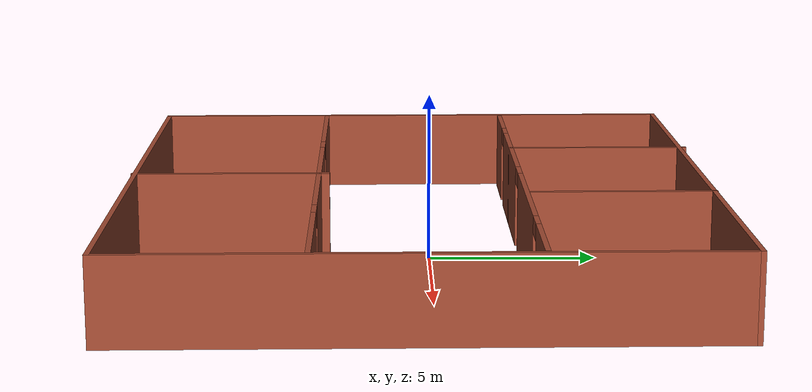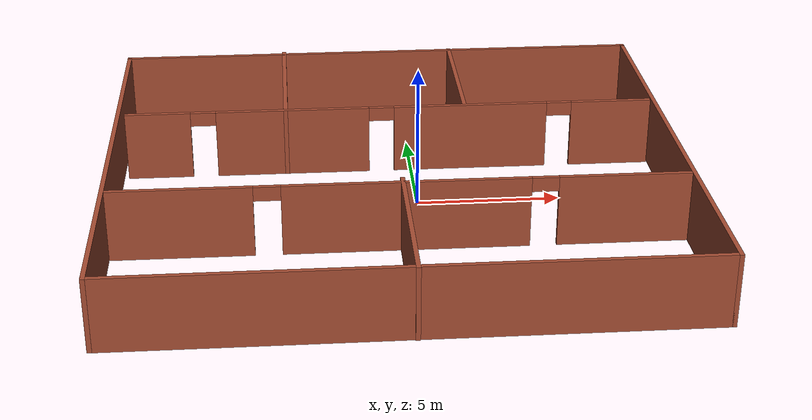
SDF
<?xml version='1.0'?>
<sdf version='1.6'>
  <model name='Building'>
    <pose frame=''>-0.815891 -0.27075 0 0 -0 0</pose>
    <link name='Wall_11'>
      <collision name='Wall_11_Collision'>
        <geometry>
          <box>
            <size>19.5 0.15 2.5</size>
          </box>
        </geometry>
        <pose frame=''>0 0 1.25 0 -0 0</pose>
      </collision>
      <visual name='Wall_11_Visual'>
        <pose frame=''>0 0 1.25 0 -0 0</pose>
        <geometry>
          <box>
            <size>19.5 0.15 2.5</size>
          </box>
        </geometry>
        <material>
          <script>
            <uri>file://media/materials/scripts/gazebo.material</uri>
            <name>Gazebo/Bricks</name>
          </script>
          <ambient>1 1 1 1</ambient>
        </material>
        <meta>
          <layer>0</layer>
        </meta>
      </visual>
      <pose frame=''>0 8.49662 0 0 -0 3.14159</pose>
    </link>
    <link name='Wall_14'>
      <collision name='Wall_14_Collision'>
        <geometry>
          <box>
            <size>17.25 0.15 2.5</size>
          </box>
        </geometry>
        <pose frame=''>0 0 1.25 0 -0 0</pose>
      </collision>
      <visual name='Wall_14_Visual'>
        <pose frame=''>0 0 1.25 0 -0 0</pose>
        <geometry>
          <box>
            <size>17.25 0.15 2.5</size>
          </box>
        </geometry>
        <material>
          <script>
            <uri>file://media/materials/scripts/gazebo.material</uri>
            <name>Gazebo/Bricks</name>
          </script>
          <ambient>1 1 1 1</ambient>
        </material>
        <meta>
          <layer>0</layer>
        </meta>
      </visual>
      <pose frame=''>-9.675 -0.053382 0 0 -0 1.5708</pose>
    </link>
    <link name='Wall_16'>
      <pose frame=''>0.002951 -3.04368 0 0 -0 0</pose>
      <visual name='Wall_16_Visual_0'>
        <pose frame=''>-7.22833 0 1.25 0 -0 0</pose>
        <geometry>
          <box>
            <size>4.79334 0.15 2.5</size>
          </box>
        </geometry>
        <material>
          <script>
            <uri>file://media/materials/scripts/gazebo.material</uri>
            <name>Gazebo/Bricks</name>
          </script>
          <ambient>1 1 1 1</ambient>
        </material>
        <meta>
          <layer>0</layer>
        </meta>
      </visual>
      <collision name='Wall_16_Collision_0'>
        <geometry>
          <box>
            <size>4.79334 0.15 2.5</size>
          </box>
        </geometry>
        <pose frame=''>-7.22833 0 1.25 0 -0 0</pose>
      </collision>
      <visual name='Wall_16_Visual_1'>
        <pose frame=''>0.171405 0 1.25 0 -0 0</pose>
        <geometry>
          <box>
            <size>8.20613 0.15 2.5</size>
          </box>
        </geometry>
        <material>
          <script>
            <uri>file://media/materials/scripts/gazebo.material</uri>
            <name>Gazebo/Bricks</name>
          </script>
          <ambient>1 1 1 1</ambient>
        </material>
        <meta>
          <layer>0</layer>
        </meta>
      </visual>
      <collision name='Wall_16_Collision_1'>
        <geometry>
          <box>
            <size>8.20613 0.15 2.5</size>
          </box>
        </geometry>
        <pose frame=''>0.171405 0 1.25 0 -0 0</pose>
      </collision>
      <visual name='Wall_16_Visual_2'>
        <pose frame=''>7.39973 0 1.25 0 -0 0</pose>
        <geometry>
          <box>
            <size>4.45053 0.15 2.5</size>
          </box>
        </geometry>
        <material>
          <script>
            <uri>file://media/materials/scripts/gazebo.material</uri>
            <name>Gazebo/Bricks</name>
          </script>
          <ambient>1 1 1 1</ambient>
        </material>
        <meta>
          <layer>0</layer>
        </meta>
      </visual>
      <collision name='Wall_16_Collision_2'>
        <geometry>
          <box>
            <size>4.45053 0.15 2.5</size>
          </box>
        </geometry>
        <pose frame=''>7.39973 0 1.25 0 -0 0</pose>
      </collision>
      <visual name='Wall_16_Visual_3'>
        <pose frame=''>-4.38166 0 2.25 0 -0 0</pose>
        <geometry>
          <box>
            <size>0.9 0.15 0.5</size>
          </box>
        </geometry>
        <material>
          <script>
            <uri>file://media/materials/scripts/gazebo.material</uri>
            <name>Gazebo/Bricks</name>
          </script>
          <ambient>1 1 1 1</ambient>
        </material>
        <meta>
          <layer>0</layer>
        </meta>
      </visual>
      <collision name='Wall_16_Collision_3'>
        <geometry>
          <box>
            <size>0.9 0.15 0.5</size>
          </box>
        </geometry>
        <pose frame=''>-4.38166 0 2.25 0 -0 0</pose>
      </collision>
      <visual name='Wall_16_Visual_4'>
        <pose frame=''>4.72447 0 2.25 0 -0 0</pose>
        <geometry>
          <box>
            <size>0.9 0.15 0.5</size>
          </box>
        </geometry>
        <material>
          <script>
            <uri>file://media/materials/scripts/gazebo.material</uri>
            <name>Gazebo/Bricks</name>
          </script>
          <ambient>1 1 1 1</ambient>
        </material>
        <meta>
          <layer>0</layer>
        </meta>
      </visual>
      <collision name='Wall_16_Collision_4'>
        <geometry>
          <box>
            <size>0.9 0.15 0.5</size>
          </box>
        </geometry>
        <pose frame=''>4.72447 0 2.25 0 -0 0</pose>
      </collision>
    </link>
    <link name='Wall_18'>
      <pose frame=''>0.062534 3.04758 0 0 -0 0</pose>
      <visual name='Wall_18_Visual_0'>
        <pose frame=''>-8.33389 0 1.25 0 -0 0</pose>
        <geometry>
          <box>
            <size>2.33223 0.15 2.5</size>
          </box>
        </geometry>
        <material>
          <script>
            <uri>file://media/materials/scripts/gazebo.material</uri>
            <name>Gazebo/Bricks</name>
          </script>
          <ambient>1 1 1 1</ambient>
        </material>
        <meta>
          <layer>0</layer>
        </meta>
      </visual>
      <collision name='Wall_18_Collision_0'>
        <geometry>
          <box>
            <size>2.33223 0.15 2.5</size>
          </box>
        </geometry>
        <pose frame=''>-8.33389 0 1.25 0 -0 0</pose>
      </collision>
      <visual name='Wall_18_Visual_1'>
        <pose frame=''>-3.51832 0 1.25 0 -0 0</pose>
        <geometry>
          <box>
            <size>5.4989 0.15 2.5</size>
          </box>
        </geometry>
        <material>
          <script>
            <uri>file://media/materials/scripts/gazebo.material</uri>
            <name>Gazebo/Bricks</name>
          </script>
          <ambient>1 1 1 1</ambient>
        </material>
        <meta>
          <layer>0</layer>
        </meta>
      </visual>
      <collision name='Wall_18_Collision_1'>
        <geometry>
          <box>
            <size>5.4989 0.15 2.5</size>
          </box>
        </geometry>
        <pose frame=''>-3.51832 0 1.25 0 -0 0</pose>
      </collision>
      <visual name='Wall_18_Visual_2'>
        <pose frame=''>2.91134 0 1.25 0 -0 0</pose>
        <geometry>
          <box>
            <size>5.56043 0.15 2.5</size>
          </box>
        </geometry>
        <material>
          <script>
            <uri>file://media/materials/scripts/gazebo.material</uri>
            <name>Gazebo/Bricks</name>
          </script>
          <ambient>1 1 1 1</ambient>
        </material>
        <meta>
          <layer>0</layer>
        </meta>
      </visual>
      <collision name='Wall_18_Collision_2'>
        <geometry>
          <box>
            <size>5.56043 0.15 2.5</size>
          </box>
        </geometry>
        <pose frame=''>2.91134 0 1.25 0 -0 0</pose>
      </collision>
      <visual name='Wall_18_Visual_3'>
        <pose frame=''>8.04578 0 1.25 0 -0 0</pose>
        <geometry>
          <box>
            <size>2.90845 0.15 2.5</size>
          </box>
        </geometry>
        <material>
          <script>
            <uri>file://media/materials/scripts/gazebo.material</uri>
            <name>Gazebo/Bricks</name>
          </script>
          <ambient>1 1 1 1</ambient>
        </material>
        <meta>
          <layer>0</layer>
        </meta>
      </visual>
      <collision name='Wall_18_Collision_3'>
        <geometry>
          <box>
            <size>2.90845 0.15 2.5</size>
          </box>
        </geometry>
        <pose frame=''>8.04578 0 1.25 0 -0 0</pose>
      </collision>
      <visual name='Wall_18_Visual_4'>
        <pose frame=''>-6.71777 0 2.25 0 -0 0</pose>
        <geometry>
          <box>
            <size>0.9 0.15 0.5</size>
          </box>
        </geometry>
        <material>
          <script>
            <uri>file://media/materials/scripts/gazebo.material</uri>
            <name>Gazebo/Bricks</name>
          </script>
          <ambient>1 1 1 1</ambient>
        </material>
        <meta>
          <layer>0</layer>
        </meta>
      </visual>
      <collision name='Wall_18_Collision_4'>
        <geometry>
          <box>
            <size>0.9 0.15 0.5</size>
          </box>
        </geometry>
        <pose frame=''>-6.71777 0 2.25 0 -0 0</pose>
      </collision>
      <visual name='Wall_18_Visual_5'>
        <pose frame=''>-0.318874 0 2.25 0 -0 0</pose>
        <geometry>
          <box>
            <size>0.9 0.15 0.5</size>
          </box>
        </geometry>
        <material>
          <script>
            <uri>file://media/materials/scripts/gazebo.material</uri>
            <name>Gazebo/Bricks</name>
          </script>
          <ambient>1 1 1 1</ambient>
        </material>
        <meta>
          <layer>0</layer>
        </meta>
      </visual>
      <collision name='Wall_18_Collision_5'>
        <geometry>
          <box>
            <size>0.9 0.15 0.5</size>
          </box>
        </geometry>
        <pose frame=''>-0.318874 0 2.25 0 -0 0</pose>
      </collision>
      <visual name='Wall_18_Visual_6'>
        <pose frame=''>6.14155 0 2.25 0 -0 0</pose>
        <geometry>
          <box>
            <size>0.9 0.15 0.5</size>
          </box>
        </geometry>
        <material>
          <script>
            <uri>file://media/materials/scripts/gazebo.material</uri>
            <name>Gazebo/Bricks</name>
          </script>
          <ambient>1 1 1 1</ambient>
        </material>
        <meta>
          <layer>0</layer>
        </meta>
      </visual>
      <collision name='Wall_18_Collision_6'>
        <geometry>
          <box>
            <size>0.9 0.15 0.5</size>
          </box>
        </geometry>
        <pose frame=''>6.14155 0 2.25 0 -0 0</pose>
      </collision>
    </link>
    <link name='Wall_20'>
      <collision name='Wall_20_Collision'>
        <geometry>
          <box>
            <size>6 0.15 2.5</size>
          </box>
        </geometry>
        <pose frame=''>0 0 1.25 0 -0 0</pose>
      </collision>
      <visual name='Wall_20_Visual'>
        <pose frame=''>0 0 1.25 0 -0 0</pose>
        <geometry>
          <box>
            <size>6 0.15 2.5</size>
          </box>
        </geometry>
        <material>
          <script>
            <uri>file://media/materials/scripts/gazebo.material</uri>
            <name>Gazebo/Bricks</name>
          </script>
          <ambient>1 1 1 1</ambient>
        </material>
        <meta>
          <layer>0</layer>
        </meta>
      </visual>
      <pose frame=''>0.0513 -5.72257 0 0 0 -1.5708</pose>
    </link>
    <link name='Wall_24'>
      <collision name='Wall_24_Collision'>
        <geometry>
          <box>
            <size>5.5 0.15 2.5</size>
          </box>
        </geometry>
        <pose frame=''>0 0 1.25 0 -0 0</pose>
      </collision>
      <visual name='Wall_24_Visual'>
        <pose frame=''>0 0 1.25 0 -0 0</pose>
        <geometry>
          <box>
            <size>5.5 0.15 2.5</size>
          </box>
        </geometry>
        <material>
          <script>
            <uri>file://media/materials/scripts/gazebo.material</uri>
            <name>Gazebo/Bricks</name>
          </script>
          <ambient>1 1 1 1</ambient>
        </material>
        <meta>
          <layer>0</layer>
        </meta>
      </visual>
      <pose frame=''>2.75853 5.84563 0 0 -0 1.5708</pose>
    </link>
    <link name='Wall_26'>
      <collision name='Wall_26_Collision'>
        <geometry>
          <box>
            <size>5.75 0.15 2.5</size>
          </box>
        </geometry>
        <pose frame=''>0 0 1.25 0 -0 0</pose>
      </collision>
      <visual name='Wall_26_Visual'>
        <pose frame=''>0 0 1.25 0 -0 0</pose>
        <geometry>
          <box>
            <size>5.75 0.15 2.5</size>
          </box>
        </geometry>
        <material>
          <script>
            <uri>file://media/materials/scripts/gazebo.material</uri>
            <name>Gazebo/Bricks</name>
          </script>
          <ambient>1 1 1 1</ambient>
        </material>
        <meta>
          <layer>0</layer>
        </meta>
      </visual>
      <pose frame=''>-3.7019 5.84757 0 0 -0 1.5708</pose>
    </link>
    <link name='Wall_7'>
      <collision name='Wall_7_Collision'>
        <geometry>
          <box>
            <size>19.5 0.15 2.5</size>
          </box>
        </geometry>
        <pose frame=''>0 0 1.25 0 -0 0</pose>
      </collision>
      <visual name='Wall_7_Visual'>
        <pose frame=''>0 0 1.25 0 -0 0</pose>
        <geometry>
          <box>
            <size>19.5 0.15 2.5</size>
          </box>
        </geometry>
        <material>
          <script>
            <uri>file://media/materials/scripts/gazebo.material</uri>
            <name>Gazebo/Bricks</name>
          </script>
          <ambient>1 1 1 1</ambient>
        </material>
        <meta>
          <layer>0</layer>
        </meta>
      </visual>
      <pose frame=''>0 -8.60338 0 0 -0 0</pose>
    </link>
    <link name='Wall_9'>
      <collision name='Wall_9_Collision'>
        <geometry>
          <box>
            <size>17.25 0.15 2.5</size>
          </box>
        </geometry>
        <pose frame=''>0 0 1.25 0 -0 0</pose>
      </collision>
      <visual name='Wall_9_Visual'>
        <pose frame=''>0 0 1.25 0 -0 0</pose>
        <geometry>
          <box>
            <size>17.25 0.15 2.5</size>
          </box>
        </geometry>
        <material>
          <script>
            <uri>file://media/materials/scripts/gazebo.material</uri>
            <name>Gazebo/Bricks</name>
          </script>
          <ambient>1 1 1 1</ambient>
        </material>
        <meta>
          <layer>0</layer>
        </meta>
      </visual>
      <pose frame=''>9.675 -0.053382 0 0 -0 1.5708</pose>
    </link>
    <static>1</static>
  </model>
</sdf>
